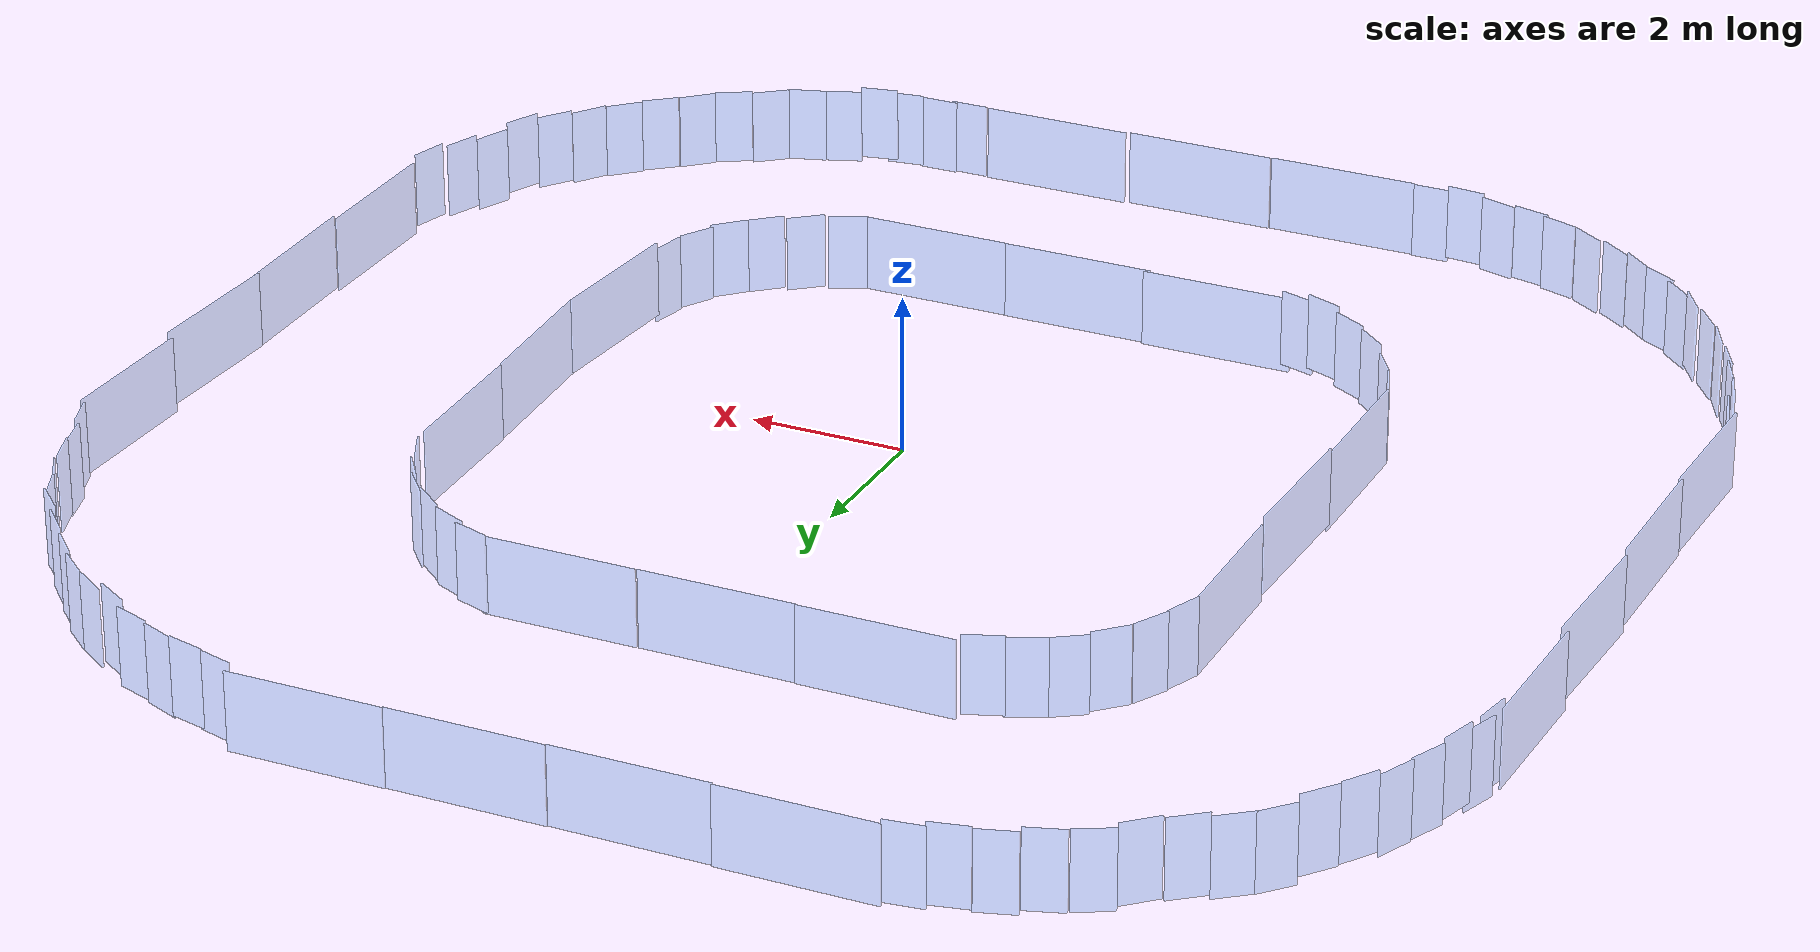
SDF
<?xml version="1.0"?>
<sdf version="1.6">
  <model name="track_walls">
    <static>true</static>
    <link name="segment_0">
      <pose>-0.0636 -5.0557 0.0000 0.0000 0.0000 0.0000</pose>
      <collision name="collision">
        <geometry>
          <box>
            <size>2.0 0.02 1.0</size>
          </box>
        </geometry>
      </collision>
      <visual name="visual">
        <geometry>
          <box>
            <size>2.0 0.02 1.0</size>
          </box>
        </geometry>
        <material>
          <ambient>0.3 0.6 1.0 0.3</ambient>
          <diffuse>0.3 0.6 1.0 0.3</diffuse>
        </material>
      </visual>
    </link>
    <link name="segment_1">
      <pose>-1.9852 -5.0141 0.0000 0.0000 0.0000 0.0000</pose>
      <collision name="collision">
        <geometry>
          <box>
            <size>2.0 0.02 1.0</size>
          </box>
        </geometry>
      </collision>
      <visual name="visual">
        <geometry>
          <box>
            <size>2.0 0.02 1.0</size>
          </box>
        </geometry>
        <material>
          <ambient>0.3 0.6 1.0 0.3</ambient>
          <diffuse>0.3 0.6 1.0 0.3</diffuse>
        </material>
      </visual>
    </link>
    <link name="segment_2">
      <pose>-2.0919 -9.0610 0.0000 0.0000 0.0000 0.0000</pose>
      <collision name="collision">
        <geometry>
          <box>
            <size>2.0 0.02 1.0</size>
          </box>
        </geometry>
      </collision>
      <visual name="visual">
        <geometry>
          <box>
            <size>2.0 0.02 1.0</size>
          </box>
        </geometry>
        <material>
          <ambient>0.3 0.6 1.0 0.3</ambient>
          <diffuse>0.3 0.6 1.0 0.3</diffuse>
        </material>
      </visual>
    </link>
    <link name="segment_3">
      <pose>4.9026 2.0037 0.0672 0.0000 0.0000 1.6030</pose>
      <collision name="collision">
        <geometry>
          <box>
            <size>2.0 0.02 1.0</size>
          </box>
        </geometry>
      </collision>
      <visual name="visual">
        <geometry>
          <box>
            <size>2.0 0.02 1.0</size>
          </box>
        </geometry>
        <material>
          <ambient>0.3 0.6 1.0 0.3</ambient>
          <diffuse>0.3 0.6 1.0 0.3</diffuse>
        </material>
      </visual>
    </link>
    <link name="segment_4">
      <pose>2.0071 5.0050 0.0000 0.0000 0.0000 0.0000</pose>
      <collision name="collision">
        <geometry>
          <box>
            <size>2.0 0.02 1.0</size>
          </box>
        </geometry>
      </collision>
      <visual name="visual">
        <geometry>
          <box>
            <size>2.0 0.02 1.0</size>
          </box>
        </geometry>
        <material>
          <ambient>0.3 0.6 1.0 0.3</ambient>
          <diffuse>0.3 0.6 1.0 0.3</diffuse>
        </material>
      </visual>
    </link>
    <link name="segment_5">
      <pose>-0.0129 4.9969 0.0000 0.0000 0.0000 0.0000</pose>
      <collision name="collision">
        <geometry>
          <box>
            <size>2.0 0.02 1.0</size>
          </box>
        </geometry>
      </collision>
      <visual name="visual">
        <geometry>
          <box>
            <size>2.0 0.02 1.0</size>
          </box>
        </geometry>
        <material>
          <ambient>0.3 0.6 1.0 0.3</ambient>
          <diffuse>0.3 0.6 1.0 0.3</diffuse>
        </material>
      </visual>
    </link>
    <link name="segment_6">
      <pose>-2.0087 5.0126 0.0000 0.0000 0.0000 0.0000</pose>
      <collision name="collision">
        <geometry>
          <box>
            <size>2.0 0.02 1.0</size>
          </box>
        </geometry>
      </collision>
      <visual name="visual">
        <geometry>
          <box>
            <size>2.0 0.02 1.0</size>
          </box>
        </geometry>
        <material>
          <ambient>0.3 0.6 1.0 0.3</ambient>
          <diffuse>0.3 0.6 1.0 0.3</diffuse>
        </material>
      </visual>
    </link>
    <link name="segment_7">
      <pose>-9.0928 -2.9673 0.1394 0.0000 0.0000 -1.5906</pose>
      <collision name="collision">
        <geometry>
          <box>
            <size>2.0 0.02 1.0</size>
          </box>
        </geometry>
      </collision>
      <visual name="visual">
        <geometry>
          <box>
            <size>2.0 0.02 1.0</size>
          </box>
        </geometry>
        <material>
          <ambient>0.3 0.6 1.0 0.3</ambient>
          <diffuse>0.3 0.6 1.0 0.3</diffuse>
        </material>
      </visual>
    </link>
    <link name="segment_8">
      <pose>-9.0923 -1.0161 0.1254 0.0000 0.0000 -1.5716</pose>
      <collision name="collision">
        <geometry>
          <box>
            <size>2.0 0.02 1.0</size>
          </box>
        </geometry>
      </collision>
      <visual name="visual">
        <geometry>
          <box>
            <size>2.0 0.02 1.0</size>
          </box>
        </geometry>
        <material>
          <ambient>0.3 0.6 1.0 0.3</ambient>
          <diffuse>0.3 0.6 1.0 0.3</diffuse>
        </material>
      </visual>
    </link>
    <link name="segment_9">
      <pose>-9.0709 0.9973 0.0617 0.0000 0.0000 -1.6056</pose>
      <collision name="collision">
        <geometry>
          <box>
            <size>2.0 0.02 1.0</size>
          </box>
        </geometry>
      </collision>
      <visual name="visual">
        <geometry>
          <box>
            <size>2.0 0.02 1.0</size>
          </box>
        </geometry>
        <material>
          <ambient>0.3 0.6 1.0 0.3</ambient>
          <diffuse>0.3 0.6 1.0 0.3</diffuse>
        </material>
      </visual>
    </link>
    <link name="segment_10">
      <pose>-9.0882 2.9750 0.0239 0.0000 0.0000 -1.5889</pose>
      <collision name="collision">
        <geometry>
          <box>
            <size>2.0 0.02 1.0</size>
          </box>
        </geometry>
      </collision>
      <visual name="visual">
        <geometry>
          <box>
            <size>2.0 0.02 1.0</size>
          </box>
        </geometry>
        <material>
          <ambient>0.3 0.6 1.0 0.3</ambient>
          <diffuse>0.3 0.6 1.0 0.3</diffuse>
        </material>
      </visual>
    </link>
    <link name="segment_11">
      <pose>-3.0208 9.0894 0.0000 0.0000 0.0000 0.0000</pose>
      <collision name="collision">
        <geometry>
          <box>
            <size>2.0 0.02 1.0</size>
          </box>
        </geometry>
      </collision>
      <visual name="visual">
        <geometry>
          <box>
            <size>2.0 0.02 1.0</size>
          </box>
        </geometry>
        <material>
          <ambient>0.3 0.6 1.0 0.3</ambient>
          <diffuse>0.3 0.6 1.0 0.3</diffuse>
        </material>
      </visual>
    </link>
    <link name="segment_12">
      <pose>-1.0256 9.0649 0.0000 0.0000 0.0000 0.0000</pose>
      <collision name="collision">
        <geometry>
          <box>
            <size>2.0 0.02 1.0</size>
          </box>
        </geometry>
      </collision>
      <visual name="visual">
        <geometry>
          <box>
            <size>2.0 0.02 1.0</size>
          </box>
        </geometry>
        <material>
          <ambient>0.3 0.6 1.0 0.3</ambient>
          <diffuse>0.3 0.6 1.0 0.3</diffuse>
        </material>
      </visual>
    </link>
    <link name="segment_13">
      <pose>-0.0792 -9.0436 0.0000 0.0000 0.0000 0.0000</pose>
      <collision name="collision">
        <geometry>
          <box>
            <size>2.0 0.02 1.0</size>
          </box>
        </geometry>
      </collision>
      <visual name="visual">
        <geometry>
          <box>
            <size>2.0 0.02 1.0</size>
          </box>
        </geometry>
        <material>
          <ambient>0.3 0.6 1.0 0.3</ambient>
          <diffuse>0.3 0.6 1.0 0.3</diffuse>
        </material>
      </visual>
    </link>
    <link name="segment_14">
      <pose>0.9824 9.0794 0.0000 0.0000 0.0000 0.0000</pose>
      <collision name="collision">
        <geometry>
          <box>
            <size>2.0 0.02 1.0</size>
          </box>
        </geometry>
      </collision>
      <visual name="visual">
        <geometry>
          <box>
            <size>2.0 0.02 1.0</size>
          </box>
        </geometry>
        <material>
          <ambient>0.3 0.6 1.0 0.3</ambient>
          <diffuse>0.3 0.6 1.0 0.3</diffuse>
        </material>
      </visual>
    </link>
    <link name="segment_15">
      <pose>2.9768 9.0939 0.0000 0.0000 0.0000 0.0000</pose>
      <collision name="collision">
        <geometry>
          <box>
            <size>2.0 0.02 1.0</size>
          </box>
        </geometry>
      </collision>
      <visual name="visual">
        <geometry>
          <box>
            <size>2.0 0.02 1.0</size>
          </box>
        </geometry>
        <material>
          <ambient>0.3 0.6 1.0 0.3</ambient>
          <diffuse>0.3 0.6 1.0 0.3</diffuse>
        </material>
      </visual>
    </link>
    <link name="segment_16">
      <pose>8.9949 3.0067 0.0616 0.0000 0.0000 1.5429</pose>
      <collision name="collision">
        <geometry>
          <box>
            <size>2.0 0.02 1.0</size>
          </box>
        </geometry>
      </collision>
      <visual name="visual">
        <geometry>
          <box>
            <size>2.0 0.02 1.0</size>
          </box>
        </geometry>
        <material>
          <ambient>0.3 0.6 1.0 0.3</ambient>
          <diffuse>0.3 0.6 1.0 0.3</diffuse>
        </material>
      </visual>
    </link>
    <link name="segment_17">
      <pose>8.9987 0.9739 0.1033 0.0000 0.0000 1.5240</pose>
      <collision name="collision">
        <geometry>
          <box>
            <size>2.0 0.02 1.0</size>
          </box>
        </geometry>
      </collision>
      <visual name="visual">
        <geometry>
          <box>
            <size>2.0 0.02 1.0</size>
          </box>
        </geometry>
        <material>
          <ambient>0.3 0.6 1.0 0.3</ambient>
          <diffuse>0.3 0.6 1.0 0.3</diffuse>
        </material>
      </visual>
    </link>
    <link name="segment_18">
      <pose>9.0060 -1.0173 0.0746 0.0000 0.0000 -1.5592</pose>
      <collision name="collision">
        <geometry>
          <box>
            <size>2.0 0.02 1.0</size>
          </box>
        </geometry>
      </collision>
      <visual name="visual">
        <geometry>
          <box>
            <size>2.0 0.02 1.0</size>
          </box>
        </geometry>
        <material>
          <ambient>0.3 0.6 1.0 0.3</ambient>
          <diffuse>0.3 0.6 1.0 0.3</diffuse>
        </material>
      </visual>
    </link>
    <link name="segment_19">
      <pose>8.9863 -3.0230 0.0404 0.0000 0.0000 -1.5737</pose>
      <collision name="collision">
        <geometry>
          <box>
            <size>2.0 0.02 1.0</size>
          </box>
        </geometry>
      </collision>
      <visual name="visual">
        <geometry>
          <box>
            <size>2.0 0.02 1.0</size>
          </box>
        </geometry>
        <material>
          <ambient>0.3 0.6 1.0 0.3</ambient>
          <diffuse>0.3 0.6 1.0 0.3</diffuse>
        </material>
      </visual>
    </link>
    <link name="segment_20">
      <pose>1.9766 -9.0130 0.0000 0.0000 0.0000 0.0000</pose>
      <collision name="collision">
        <geometry>
          <box>
            <size>2.0 0.02 1.0</size>
          </box>
        </geometry>
      </collision>
      <visual name="visual">
        <geometry>
          <box>
            <size>2.0 0.02 1.0</size>
          </box>
        </geometry>
        <material>
          <ambient>0.3 0.6 1.0 0.3</ambient>
          <diffuse>0.3 0.6 1.0 0.3</diffuse>
        </material>
      </visual>
    </link>
    <link name="segment_21">
      <pose>1.9374 -5.0646 0.0000 0.0000 0.0000 0.0000</pose>
      <collision name="collision">
        <geometry>
          <box>
            <size>2.0 0.02 1.0</size>
          </box>
        </geometry>
      </collision>
      <visual name="visual">
        <geometry>
          <box>
            <size>2.0 0.02 1.0</size>
          </box>
        </geometry>
        <material>
          <ambient>0.3 0.6 1.0 0.3</ambient>
          <diffuse>0.3 0.6 1.0 0.3</diffuse>
        </material>
      </visual>
    </link>
    <link name="segment_22">
      <pose>-5.0511 -2.0249 0.0284 0.0000 0.0000 -1.5633</pose>
      <collision name="collision">
        <geometry>
          <box>
            <size>2.0 0.02 1.0</size>
          </box>
        </geometry>
      </collision>
      <visual name="visual">
        <geometry>
          <box>
            <size>2.0 0.02 1.0</size>
          </box>
        </geometry>
        <material>
          <ambient>0.3 0.6 1.0 0.3</ambient>
          <diffuse>0.3 0.6 1.0 0.3</diffuse>
        </material>
      </visual>
    </link>
    <link name="segment_23">
      <pose>-5.0722 -0.0241 0.1284 0.0000 0.0000 1.5549</pose>
      <collision name="collision">
        <geometry>
          <box>
            <size>2.0 0.02 1.0</size>
          </box>
        </geometry>
      </collision>
      <visual name="visual">
        <geometry>
          <box>
            <size>2.0 0.02 1.0</size>
          </box>
        </geometry>
        <material>
          <ambient>0.3 0.6 1.0 0.3</ambient>
          <diffuse>0.3 0.6 1.0 0.3</diffuse>
        </material>
      </visual>
    </link>
    <link name="segment_24">
      <pose>-5.0625 2.0098 0.0420 0.0000 0.0000 1.5852</pose>
      <collision name="collision">
        <geometry>
          <box>
            <size>2.0 0.02 1.0</size>
          </box>
        </geometry>
      </collision>
      <visual name="visual">
        <geometry>
          <box>
            <size>2.0 0.02 1.0</size>
          </box>
        </geometry>
        <material>
          <ambient>0.3 0.6 1.0 0.3</ambient>
          <diffuse>0.3 0.6 1.0 0.3</diffuse>
        </material>
      </visual>
    </link>
    <link name="segment_25">
      <pose>4.8982 -1.9092 0.1412 0.0000 0.0000 -1.6535</pose>
      <collision name="collision">
        <geometry>
          <box>
            <size>2.0 0.02 1.0</size>
          </box>
        </geometry>
      </collision>
      <visual name="visual">
        <geometry>
          <box>
            <size>2.0 0.02 1.0</size>
          </box>
        </geometry>
        <material>
          <ambient>0.3 0.6 1.0 0.3</ambient>
          <diffuse>0.3 0.6 1.0 0.3</diffuse>
        </material>
      </visual>
    </link>
    <link name="segment_26">
      <pose>4.9810 0.0038 0.0888 0.0000 0.0000 -1.5170</pose>
      <collision name="collision">
        <geometry>
          <box>
            <size>2.0 0.02 1.0</size>
          </box>
        </geometry>
      </collision>
      <visual name="visual">
        <geometry>
          <box>
            <size>2.0 0.02 1.0</size>
          </box>
        </geometry>
        <material>
          <ambient>0.3 0.6 1.0 0.3</ambient>
          <diffuse>0.3 0.6 1.0 0.3</diffuse>
        </material>
      </visual>
    </link>
    <link name="segment_27">
      <pose>-4.9471 -3.2880 0.0410 0.0000 0.0000 -1.1865</pose>
      <collision name="collision">
        <geometry>
          <box>
            <size>0.5 0.02 1.0</size>
          </box>
        </geometry>
      </collision>
      <visual name="visual">
        <geometry>
          <box>
            <size>0.5 0.02 1.0</size>
          </box>
        </geometry>
        <material>
          <ambient>0.3 0.6 1.0 0.3</ambient>
          <diffuse>0.3 0.6 1.0 0.3</diffuse>
        </material>
      </visual>
    </link>
    <link name="segment_28">
      <pose>-4.7203 -3.7355 0.0292 0.0000 0.0000 -0.9873</pose>
      <collision name="collision">
        <geometry>
          <box>
            <size>0.5 0.02 1.0</size>
          </box>
        </geometry>
      </collision>
      <visual name="visual">
        <geometry>
          <box>
            <size>0.5 0.02 1.0</size>
          </box>
        </geometry>
        <material>
          <ambient>0.3 0.6 1.0 0.3</ambient>
          <diffuse>0.3 0.6 1.0 0.3</diffuse>
        </material>
      </visual>
    </link>
    <link name="segment_29">
      <pose>-4.3785 -4.1792 0.1070 0.0000 0.0000 -0.7221</pose>
      <collision name="collision">
        <geometry>
          <box>
            <size>0.5 0.02 1.0</size>
          </box>
        </geometry>
      </collision>
      <visual name="visual">
        <geometry>
          <box>
            <size>0.5 0.02 1.0</size>
          </box>
        </geometry>
        <material>
          <ambient>0.3 0.6 1.0 0.3</ambient>
          <diffuse>0.3 0.6 1.0 0.3</diffuse>
        </material>
      </visual>
    </link>
    <link name="segment_30">
      <pose>4.8025 -3.1673 0.0295 0.0000 0.0000 1.3622</pose>
      <collision name="collision">
        <geometry>
          <box>
            <size>0.5 0.02 1.0</size>
          </box>
        </geometry>
      </collision>
      <visual name="visual">
        <geometry>
          <box>
            <size>0.5 0.02 1.0</size>
          </box>
        </geometry>
        <material>
          <ambient>0.3 0.6 1.0 0.3</ambient>
          <diffuse>0.3 0.6 1.0 0.3</diffuse>
        </material>
      </visual>
    </link>
    <link name="segment_31">
      <pose>4.8091 3.2971 0.0202 0.0000 0.0000 -1.1242</pose>
      <collision name="collision">
        <geometry>
          <box>
            <size>0.5 0.02 1.0</size>
          </box>
        </geometry>
      </collision>
      <visual name="visual">
        <geometry>
          <box>
            <size>0.5 0.02 1.0</size>
          </box>
        </geometry>
        <material>
          <ambient>0.3 0.6 1.0 0.3</ambient>
          <diffuse>0.3 0.6 1.0 0.3</diffuse>
        </material>
      </visual>
    </link>
    <link name="segment_32">
      <pose>4.5875 3.7770 0.0267 0.0000 0.0000 -0.9498</pose>
      <collision name="collision">
        <geometry>
          <box>
            <size>0.5 0.02 1.0</size>
          </box>
        </geometry>
      </collision>
      <visual name="visual">
        <geometry>
          <box>
            <size>0.5 0.02 1.0</size>
          </box>
        </geometry>
        <material>
          <ambient>0.3 0.6 1.0 0.3</ambient>
          <diffuse>0.3 0.6 1.0 0.3</diffuse>
        </material>
      </visual>
    </link>
    <link name="segment_33">
      <pose>4.3206 4.1969 0.0519 0.0000 0.0000 -0.8570</pose>
      <collision name="collision">
        <geometry>
          <box>
            <size>0.5 0.02 1.0</size>
          </box>
        </geometry>
      </collision>
      <visual name="visual">
        <geometry>
          <box>
            <size>0.5 0.02 1.0</size>
          </box>
        </geometry>
        <material>
          <ambient>0.3 0.6 1.0 0.3</ambient>
          <diffuse>0.3 0.6 1.0 0.3</diffuse>
        </material>
      </visual>
    </link>
    <link name="segment_34">
      <pose>3.9632 4.5181 0.0849 0.0000 0.0000 -0.6875</pose>
      <collision name="collision">
        <geometry>
          <box>
            <size>0.5 0.02 1.0</size>
          </box>
        </geometry>
      </collision>
      <visual name="visual">
        <geometry>
          <box>
            <size>0.5 0.02 1.0</size>
          </box>
        </geometry>
        <material>
          <ambient>0.3 0.6 1.0 0.3</ambient>
          <diffuse>0.3 0.6 1.0 0.3</diffuse>
        </material>
      </visual>
    </link>
    <link name="segment_35">
      <pose>3.5427 4.7957 0.0652 0.0000 0.0000 -0.4300</pose>
      <collision name="collision">
        <geometry>
          <box>
            <size>0.5 0.02 1.0</size>
          </box>
        </geometry>
      </collision>
      <visual name="visual">
        <geometry>
          <box>
            <size>0.5 0.02 1.0</size>
          </box>
        </geometry>
        <material>
          <ambient>0.3 0.6 1.0 0.3</ambient>
          <diffuse>0.3 0.6 1.0 0.3</diffuse>
        </material>
      </visual>
    </link>
    <link name="segment_36">
      <pose>3.1711 4.9541 0.0279 0.0000 0.0000 -0.3249</pose>
      <collision name="collision">
        <geometry>
          <box>
            <size>0.5 0.02 1.0</size>
          </box>
        </geometry>
      </collision>
      <visual name="visual">
        <geometry>
          <box>
            <size>0.5 0.02 1.0</size>
          </box>
        </geometry>
        <material>
          <ambient>0.3 0.6 1.0 0.3</ambient>
          <diffuse>0.3 0.6 1.0 0.3</diffuse>
        </material>
      </visual>
    </link>
    <link name="segment_37">
      <pose>-3.2952 4.9191 0.0793 0.0000 0.0000 0.3532</pose>
      <collision name="collision">
        <geometry>
          <box>
            <size>0.5 0.02 1.0</size>
          </box>
        </geometry>
      </collision>
      <visual name="visual">
        <geometry>
          <box>
            <size>0.5 0.02 1.0</size>
          </box>
        </geometry>
        <material>
          <ambient>0.3 0.6 1.0 0.3</ambient>
          <diffuse>0.3 0.6 1.0 0.3</diffuse>
        </material>
      </visual>
    </link>
    <link name="segment_38">
      <pose>-3.7448 4.7358 0.0642 0.0000 0.0000 0.4077</pose>
      <collision name="collision">
        <geometry>
          <box>
            <size>0.5 0.02 1.0</size>
          </box>
        </geometry>
      </collision>
      <visual name="visual">
        <geometry>
          <box>
            <size>0.5 0.02 1.0</size>
          </box>
        </geometry>
        <material>
          <ambient>0.3 0.6 1.0 0.3</ambient>
          <diffuse>0.3 0.6 1.0 0.3</diffuse>
        </material>
      </visual>
    </link>
    <link name="segment_39">
      <pose>-4.1375 4.4844 0.0469 0.0000 0.0000 0.5907</pose>
      <collision name="collision">
        <geometry>
          <box>
            <size>0.5 0.02 1.0</size>
          </box>
        </geometry>
      </collision>
      <visual name="visual">
        <geometry>
          <box>
            <size>0.5 0.02 1.0</size>
          </box>
        </geometry>
        <material>
          <ambient>0.3 0.6 1.0 0.3</ambient>
          <diffuse>0.3 0.6 1.0 0.3</diffuse>
        </material>
      </visual>
    </link>
    <link name="segment_40">
      <pose>-3.9684 -4.4937 0.1368 0.0000 0.0000 -0.5188</pose>
      <collision name="collision">
        <geometry>
          <box>
            <size>0.5 0.02 1.0</size>
          </box>
        </geometry>
      </collision>
      <visual name="visual">
        <geometry>
          <box>
            <size>0.5 0.02 1.0</size>
          </box>
        </geometry>
        <material>
          <ambient>0.3 0.6 1.0 0.3</ambient>
          <diffuse>0.3 0.6 1.0 0.3</diffuse>
        </material>
      </visual>
    </link>
    <link name="segment_41">
      <pose>-4.5089 4.1387 0.0642 0.0000 0.0000 0.7836</pose>
      <collision name="collision">
        <geometry>
          <box>
            <size>0.5 0.02 1.0</size>
          </box>
        </geometry>
      </collision>
      <visual name="visual">
        <geometry>
          <box>
            <size>0.5 0.02 1.0</size>
          </box>
        </geometry>
        <material>
          <ambient>0.3 0.6 1.0 0.3</ambient>
          <diffuse>0.3 0.6 1.0 0.3</diffuse>
        </material>
      </visual>
    </link>
    <link name="segment_42">
      <pose>-4.8132 3.7280 0.0712 0.0000 0.0000 1.0933</pose>
      <collision name="collision">
        <geometry>
          <box>
            <size>0.5 0.02 1.0</size>
          </box>
        </geometry>
      </collision>
      <visual name="visual">
        <geometry>
          <box>
            <size>0.5 0.02 1.0</size>
          </box>
        </geometry>
        <material>
          <ambient>0.3 0.6 1.0 0.3</ambient>
          <diffuse>0.3 0.6 1.0 0.3</diffuse>
        </material>
      </visual>
    </link>
    <link name="segment_43">
      <pose>-5.0062 3.2634 0.0714 0.0000 0.0000 1.2012</pose>
      <collision name="collision">
        <geometry>
          <box>
            <size>0.5 0.02 1.0</size>
          </box>
        </geometry>
      </collision>
      <visual name="visual">
        <geometry>
          <box>
            <size>0.5 0.02 1.0</size>
          </box>
        </geometry>
        <material>
          <ambient>0.3 0.6 1.0 0.3</ambient>
          <diffuse>0.3 0.6 1.0 0.3</diffuse>
        </material>
      </visual>
    </link>
    <link name="segment_44">
      <pose>3.2595 -9.0290 0.0000 0.0000 0.0000 0.0000</pose>
      <collision name="collision">
        <geometry>
          <box>
            <size>0.5 0.02 1.0</size>
          </box>
        </geometry>
      </collision>
      <visual name="visual">
        <geometry>
          <box>
            <size>0.5 0.02 1.0</size>
          </box>
        </geometry>
        <material>
          <ambient>0.3 0.6 1.0 0.3</ambient>
          <diffuse>0.3 0.6 1.0 0.3</diffuse>
        </material>
      </visual>
    </link>
    <link name="segment_45">
      <pose>3.6843 -8.9851 0.0000 0.0000 0.0000 0.0000</pose>
      <collision name="collision">
        <geometry>
          <box>
            <size>0.5 0.02 1.0</size>
          </box>
        </geometry>
      </collision>
      <visual name="visual">
        <geometry>
          <box>
            <size>0.5 0.02 1.0</size>
          </box>
        </geometry>
        <material>
          <ambient>0.3 0.6 1.0 0.3</ambient>
          <diffuse>0.3 0.6 1.0 0.3</diffuse>
        </material>
      </visual>
    </link>
    <link name="segment_46">
      <pose>4.1614 -8.9307 0.0228 0.0000 0.0000 0.1399</pose>
      <collision name="collision">
        <geometry>
          <box>
            <size>0.5 0.02 1.0</size>
          </box>
        </geometry>
      </collision>
      <visual name="visual">
        <geometry>
          <box>
            <size>0.5 0.02 1.0</size>
          </box>
        </geometry>
        <material>
          <ambient>0.3 0.6 1.0 0.3</ambient>
          <diffuse>0.3 0.6 1.0 0.3</diffuse>
        </material>
      </visual>
    </link>
    <link name="segment_47">
      <pose>4.5087 -8.8401 0.0686 0.0000 0.0000 0.2020</pose>
      <collision name="collision">
        <geometry>
          <box>
            <size>0.5 0.02 1.0</size>
          </box>
        </geometry>
      </collision>
      <visual name="visual">
        <geometry>
          <box>
            <size>0.5 0.02 1.0</size>
          </box>
        </geometry>
        <material>
          <ambient>0.3 0.6 1.0 0.3</ambient>
          <diffuse>0.3 0.6 1.0 0.3</diffuse>
        </material>
      </visual>
    </link>
    <link name="segment_48">
      <pose>4.9636 -8.6528 0.0234 0.0000 0.0000 0.3504</pose>
      <collision name="collision">
        <geometry>
          <box>
            <size>0.5 0.02 1.0</size>
          </box>
        </geometry>
      </collision>
      <visual name="visual">
        <geometry>
          <box>
            <size>0.5 0.02 1.0</size>
          </box>
        </geometry>
        <material>
          <ambient>0.3 0.6 1.0 0.3</ambient>
          <diffuse>0.3 0.6 1.0 0.3</diffuse>
        </material>
      </visual>
    </link>
    <link name="segment_49">
      <pose>5.4002 -8.4568 0.0395 0.0000 0.0000 0.3012</pose>
      <collision name="collision">
        <geometry>
          <box>
            <size>0.5 0.02 1.0</size>
          </box>
        </geometry>
      </collision>
      <visual name="visual">
        <geometry>
          <box>
            <size>0.5 0.02 1.0</size>
          </box>
        </geometry>
        <material>
          <ambient>0.3 0.6 1.0 0.3</ambient>
          <diffuse>0.3 0.6 1.0 0.3</diffuse>
        </material>
      </visual>
    </link>
    <link name="segment_50">
      <pose>5.8500 -8.2442 0.0227 0.0000 0.0000 0.6785</pose>
      <collision name="collision">
        <geometry>
          <box>
            <size>0.5 0.02 1.0</size>
          </box>
        </geometry>
      </collision>
      <visual name="visual">
        <geometry>
          <box>
            <size>0.5 0.02 1.0</size>
          </box>
        </geometry>
        <material>
          <ambient>0.3 0.6 1.0 0.3</ambient>
          <diffuse>0.3 0.6 1.0 0.3</diffuse>
        </material>
      </visual>
    </link>
    <link name="segment_51">
      <pose>-3.5180 -4.7778 0.1835 0.0000 0.0000 -0.3693</pose>
      <collision name="collision">
        <geometry>
          <box>
            <size>0.5 0.02 1.0</size>
          </box>
        </geometry>
      </collision>
      <visual name="visual">
        <geometry>
          <box>
            <size>0.5 0.02 1.0</size>
          </box>
        </geometry>
        <material>
          <ambient>0.3 0.6 1.0 0.3</ambient>
          <diffuse>0.3 0.6 1.0 0.3</diffuse>
        </material>
      </visual>
    </link>
    <link name="segment_52">
      <pose>6.2684 -7.9627 0.0429 0.0000 0.0000 0.5347</pose>
      <collision name="collision">
        <geometry>
          <box>
            <size>0.5 0.02 1.0</size>
          </box>
        </geometry>
      </collision>
      <visual name="visual">
        <geometry>
          <box>
            <size>0.5 0.02 1.0</size>
          </box>
        </geometry>
        <material>
          <ambient>0.3 0.6 1.0 0.3</ambient>
          <diffuse>0.3 0.6 1.0 0.3</diffuse>
        </material>
      </visual>
    </link>
    <link name="segment_53">
      <pose>6.6634 -7.6703 0.0354 0.0000 0.0000 0.7563</pose>
      <collision name="collision">
        <geometry>
          <box>
            <size>0.5 0.02 1.0</size>
          </box>
        </geometry>
      </collision>
      <visual name="visual">
        <geometry>
          <box>
            <size>0.5 0.02 1.0</size>
          </box>
        </geometry>
        <material>
          <ambient>0.3 0.6 1.0 0.3</ambient>
          <diffuse>0.3 0.6 1.0 0.3</diffuse>
        </material>
      </visual>
    </link>
    <link name="segment_54">
      <pose>7.0432 -7.3135 0.0496 0.0000 0.0000 0.6893</pose>
      <collision name="collision">
        <geometry>
          <box>
            <size>0.5 0.02 1.0</size>
          </box>
        </geometry>
      </collision>
      <visual name="visual">
        <geometry>
          <box>
            <size>0.5 0.02 1.0</size>
          </box>
        </geometry>
        <material>
          <ambient>0.3 0.6 1.0 0.3</ambient>
          <diffuse>0.3 0.6 1.0 0.3</diffuse>
        </material>
      </visual>
    </link>
    <link name="segment_55">
      <pose>7.4157 -6.9744 0.0377 0.0000 0.0000 0.7709</pose>
      <collision name="collision">
        <geometry>
          <box>
            <size>0.5 0.02 1.0</size>
          </box>
        </geometry>
      </collision>
      <visual name="visual">
        <geometry>
          <box>
            <size>0.5 0.02 1.0</size>
          </box>
        </geometry>
        <material>
          <ambient>0.3 0.6 1.0 0.3</ambient>
          <diffuse>0.3 0.6 1.0 0.3</diffuse>
        </material>
      </visual>
    </link>
    <link name="segment_56">
      <pose>7.7312 -6.5700 0.0590 0.0000 0.0000 0.9758</pose>
      <collision name="collision">
        <geometry>
          <box>
            <size>0.5 0.02 1.0</size>
          </box>
        </geometry>
      </collision>
      <visual name="visual">
        <geometry>
          <box>
            <size>0.5 0.02 1.0</size>
          </box>
        </geometry>
        <material>
          <ambient>0.3 0.6 1.0 0.3</ambient>
          <diffuse>0.3 0.6 1.0 0.3</diffuse>
        </material>
      </visual>
    </link>
    <link name="segment_57">
      <pose>8.0183 -6.1371 0.1028 0.0000 0.0000 0.9444</pose>
      <collision name="collision">
        <geometry>
          <box>
            <size>0.5 0.02 1.0</size>
          </box>
        </geometry>
      </collision>
      <visual name="visual">
        <geometry>
          <box>
            <size>0.5 0.02 1.0</size>
          </box>
        </geometry>
        <material>
          <ambient>0.3 0.6 1.0 0.3</ambient>
          <diffuse>0.3 0.6 1.0 0.3</diffuse>
        </material>
      </visual>
    </link>
    <link name="segment_58">
      <pose>8.2679 -5.6979 0.1695 0.0000 0.0000 1.1534</pose>
      <collision name="collision">
        <geometry>
          <box>
            <size>0.5 0.02 1.0</size>
          </box>
        </geometry>
      </collision>
      <visual name="visual">
        <geometry>
          <box>
            <size>0.5 0.02 1.0</size>
          </box>
        </geometry>
        <material>
          <ambient>0.3 0.6 1.0 0.3</ambient>
          <diffuse>0.3 0.6 1.0 0.3</diffuse>
        </material>
      </visual>
    </link>
    <link name="segment_59">
      <pose>8.4722 -5.2353 0.0744 0.0000 0.0000 1.1733</pose>
      <collision name="collision">
        <geometry>
          <box>
            <size>0.5 0.02 1.0</size>
          </box>
        </geometry>
      </collision>
      <visual name="visual">
        <geometry>
          <box>
            <size>0.5 0.02 1.0</size>
          </box>
        </geometry>
        <material>
          <ambient>0.3 0.6 1.0 0.3</ambient>
          <diffuse>0.3 0.6 1.0 0.3</diffuse>
        </material>
      </visual>
    </link>
    <link name="segment_60">
      <pose>8.6568 -4.7478 0.1420 0.0000 0.0000 1.2167</pose>
      <collision name="collision">
        <geometry>
          <box>
            <size>0.5 0.02 1.0</size>
          </box>
        </geometry>
      </collision>
      <visual name="visual">
        <geometry>
          <box>
            <size>0.5 0.02 1.0</size>
          </box>
        </geometry>
        <material>
          <ambient>0.3 0.6 1.0 0.3</ambient>
          <diffuse>0.3 0.6 1.0 0.3</diffuse>
        </material>
      </visual>
    </link>
    <link name="segment_61">
      <pose>8.8659 -4.2357 0.1766 0.0000 0.0000 1.3081</pose>
      <collision name="collision">
        <geometry>
          <box>
            <size>0.5 0.02 1.0</size>
          </box>
        </geometry>
      </collision>
      <visual name="visual">
        <geometry>
          <box>
            <size>0.5 0.02 1.0</size>
          </box>
        </geometry>
        <material>
          <ambient>0.3 0.6 1.0 0.3</ambient>
          <diffuse>0.3 0.6 1.0 0.3</diffuse>
        </material>
      </visual>
    </link>
    <link name="segment_62">
      <pose>-3.1099 -4.9368 0.0937 0.0000 0.0000 -0.3085</pose>
      <collision name="collision">
        <geometry>
          <box>
            <size>0.5 0.02 1.0</size>
          </box>
        </geometry>
      </collision>
      <visual name="visual">
        <geometry>
          <box>
            <size>0.5 0.02 1.0</size>
          </box>
        </geometry>
        <material>
          <ambient>0.3 0.6 1.0 0.3</ambient>
          <diffuse>0.3 0.6 1.0 0.3</diffuse>
        </material>
      </visual>
    </link>
    <link name="segment_63">
      <pose>8.8873 4.2464 0.0533 0.0000 0.0000 -1.2348</pose>
      <collision name="collision">
        <geometry>
          <box>
            <size>0.5 0.02 1.0</size>
          </box>
        </geometry>
      </collision>
      <visual name="visual">
        <geometry>
          <box>
            <size>0.5 0.02 1.0</size>
          </box>
        </geometry>
        <material>
          <ambient>0.3 0.6 1.0 0.3</ambient>
          <diffuse>0.3 0.6 1.0 0.3</diffuse>
        </material>
      </visual>
    </link>
    <link name="segment_64">
      <pose>8.6867 4.7195 0.0285 0.0000 0.0000 1.8461</pose>
      <collision name="collision">
        <geometry>
          <box>
            <size>0.5 0.02 1.0</size>
          </box>
        </geometry>
      </collision>
      <visual name="visual">
        <geometry>
          <box>
            <size>0.5 0.02 1.0</size>
          </box>
        </geometry>
        <material>
          <ambient>0.3 0.6 1.0 0.3</ambient>
          <diffuse>0.3 0.6 1.0 0.3</diffuse>
        </material>
      </visual>
    </link>
    <link name="segment_65">
      <pose>8.5186 5.2117 0.0812 0.0000 0.0000 -1.2333</pose>
      <collision name="collision">
        <geometry>
          <box>
            <size>0.5 0.02 1.0</size>
          </box>
        </geometry>
      </collision>
      <visual name="visual">
        <geometry>
          <box>
            <size>0.5 0.02 1.0</size>
          </box>
        </geometry>
        <material>
          <ambient>0.3 0.6 1.0 0.3</ambient>
          <diffuse>0.3 0.6 1.0 0.3</diffuse>
        </material>
      </visual>
    </link>
    <link name="segment_66">
      <pose>8.3424 5.6732 0.0601 0.0000 0.0000 -1.0145</pose>
      <collision name="collision">
        <geometry>
          <box>
            <size>0.5 0.02 1.0</size>
          </box>
        </geometry>
      </collision>
      <visual name="visual">
        <geometry>
          <box>
            <size>0.5 0.02 1.0</size>
          </box>
        </geometry>
        <material>
          <ambient>0.3 0.6 1.0 0.3</ambient>
          <diffuse>0.3 0.6 1.0 0.3</diffuse>
        </material>
      </visual>
    </link>
    <link name="segment_67">
      <pose>8.1077 6.1225 0.0931 0.0000 0.0000 -1.1559</pose>
      <collision name="collision">
        <geometry>
          <box>
            <size>0.5 0.02 1.0</size>
          </box>
        </geometry>
      </collision>
      <visual name="visual">
        <geometry>
          <box>
            <size>0.5 0.02 1.0</size>
          </box>
        </geometry>
        <material>
          <ambient>0.3 0.6 1.0 0.3</ambient>
          <diffuse>0.3 0.6 1.0 0.3</diffuse>
        </material>
      </visual>
    </link>
    <link name="segment_68">
      <pose>7.8393 6.5487 0.1691 0.0000 0.0000 -0.7712</pose>
      <collision name="collision">
        <geometry>
          <box>
            <size>0.5 0.02 1.0</size>
          </box>
        </geometry>
      </collision>
      <visual name="visual">
        <geometry>
          <box>
            <size>0.5 0.02 1.0</size>
          </box>
        </geometry>
        <material>
          <ambient>0.3 0.6 1.0 0.3</ambient>
          <diffuse>0.3 0.6 1.0 0.3</diffuse>
        </material>
      </visual>
    </link>
    <link name="segment_69">
      <pose>4.1697 8.9832 0.0871 0.0000 0.0000 -0.2779</pose>
      <collision name="collision">
        <geometry>
          <box>
            <size>0.5 0.02 1.0</size>
          </box>
        </geometry>
      </collision>
      <visual name="visual">
        <geometry>
          <box>
            <size>0.5 0.02 1.0</size>
          </box>
        </geometry>
        <material>
          <ambient>0.3 0.6 1.0 0.3</ambient>
          <diffuse>0.3 0.6 1.0 0.3</diffuse>
        </material>
      </visual>
    </link>
    <link name="segment_70">
      <pose>7.5177 6.9363 0.1331 0.0000 0.0000 -0.7958</pose>
      <collision name="collision">
        <geometry>
          <box>
            <size>0.5 0.02 1.0</size>
          </box>
        </geometry>
      </collision>
      <visual name="visual">
        <geometry>
          <box>
            <size>0.5 0.02 1.0</size>
          </box>
        </geometry>
        <material>
          <ambient>0.3 0.6 1.0 0.3</ambient>
          <diffuse>0.3 0.6 1.0 0.3</diffuse>
        </material>
      </visual>
    </link>
    <link name="segment_71">
      <pose>7.1625 7.3062 0.0729 0.0000 0.0000 -0.7845</pose>
      <collision name="collision">
        <geometry>
          <box>
            <size>0.5 0.02 1.0</size>
          </box>
        </geometry>
      </collision>
      <visual name="visual">
        <geometry>
          <box>
            <size>0.5 0.02 1.0</size>
          </box>
        </geometry>
        <material>
          <ambient>0.3 0.6 1.0 0.3</ambient>
          <diffuse>0.3 0.6 1.0 0.3</diffuse>
        </material>
      </visual>
    </link>
    <link name="segment_72">
      <pose>6.8060 7.6851 0.0699 0.0000 0.0000 -0.7051</pose>
      <collision name="collision">
        <geometry>
          <box>
            <size>0.5 0.02 1.0</size>
          </box>
        </geometry>
      </collision>
      <visual name="visual">
        <geometry>
          <box>
            <size>0.5 0.02 1.0</size>
          </box>
        </geometry>
        <material>
          <ambient>0.3 0.6 1.0 0.3</ambient>
          <diffuse>0.3 0.6 1.0 0.3</diffuse>
        </material>
      </visual>
    </link>
    <link name="segment_73">
      <pose>3.1123 -4.9455 0.0083 0.0000 0.0000 0.4402</pose>
      <collision name="collision">
        <geometry>
          <box>
            <size>0.5 0.02 1.0</size>
          </box>
        </geometry>
      </collision>
      <visual name="visual">
        <geometry>
          <box>
            <size>0.5 0.02 1.0</size>
          </box>
        </geometry>
        <material>
          <ambient>0.3 0.6 1.0 0.3</ambient>
          <diffuse>0.3 0.6 1.0 0.3</diffuse>
        </material>
      </visual>
    </link>
    <link name="segment_74">
      <pose>6.4072 7.9778 0.0639 0.0000 0.0000 -0.5844</pose>
      <collision name="collision">
        <geometry>
          <box>
            <size>0.5 0.02 1.0</size>
          </box>
        </geometry>
      </collision>
      <visual name="visual">
        <geometry>
          <box>
            <size>0.5 0.02 1.0</size>
          </box>
        </geometry>
        <material>
          <ambient>0.3 0.6 1.0 0.3</ambient>
          <diffuse>0.3 0.6 1.0 0.3</diffuse>
        </material>
      </visual>
    </link>
    <link name="segment_75">
      <pose>5.9490 8.2227 0.1355 0.0000 0.0000 -0.5457</pose>
      <collision name="collision">
        <geometry>
          <box>
            <size>0.5 0.02 1.0</size>
          </box>
        </geometry>
      </collision>
      <visual name="visual">
        <geometry>
          <box>
            <size>0.5 0.02 1.0</size>
          </box>
        </geometry>
        <material>
          <ambient>0.3 0.6 1.0 0.3</ambient>
          <diffuse>0.3 0.6 1.0 0.3</diffuse>
        </material>
      </visual>
    </link>
    <link name="segment_76">
      <pose>5.5373 8.4831 0.0698 0.0000 0.0000 -0.3416</pose>
      <collision name="collision">
        <geometry>
          <box>
            <size>0.5 0.02 1.0</size>
          </box>
        </geometry>
      </collision>
      <visual name="visual">
        <geometry>
          <box>
            <size>0.5 0.02 1.0</size>
          </box>
        </geometry>
        <material>
          <ambient>0.3 0.6 1.0 0.3</ambient>
          <diffuse>0.3 0.6 1.0 0.3</diffuse>
        </material>
      </visual>
    </link>
    <link name="segment_77">
      <pose>5.0654 8.6830 0.0550 0.0000 0.0000 -0.3925</pose>
      <collision name="collision">
        <geometry>
          <box>
            <size>0.5 0.02 1.0</size>
          </box>
        </geometry>
      </collision>
      <visual name="visual">
        <geometry>
          <box>
            <size>0.5 0.02 1.0</size>
          </box>
        </geometry>
        <material>
          <ambient>0.3 0.6 1.0 0.3</ambient>
          <diffuse>0.3 0.6 1.0 0.3</diffuse>
        </material>
      </visual>
    </link>
    <link name="segment_78">
      <pose>4.6003 8.8684 0.1022 0.0000 0.0000 -0.2482</pose>
      <collision name="collision">
        <geometry>
          <box>
            <size>0.5 0.02 1.0</size>
          </box>
        </geometry>
      </collision>
      <visual name="visual">
        <geometry>
          <box>
            <size>0.5 0.02 1.0</size>
          </box>
        </geometry>
        <material>
          <ambient>0.3 0.6 1.0 0.3</ambient>
          <diffuse>0.3 0.6 1.0 0.3</diffuse>
        </material>
      </visual>
    </link>
    <link name="segment_79">
      <pose>-4.2662 9.0499 0.0519 0.0000 0.0000 0.1225</pose>
      <collision name="collision">
        <geometry>
          <box>
            <size>0.5 0.02 1.0</size>
          </box>
        </geometry>
      </collision>
      <visual name="visual">
        <geometry>
          <box>
            <size>0.5 0.02 1.0</size>
          </box>
        </geometry>
        <material>
          <ambient>0.3 0.6 1.0 0.3</ambient>
          <diffuse>0.3 0.6 1.0 0.3</diffuse>
        </material>
      </visual>
    </link>
    <link name="segment_80">
      <pose>-4.7291 8.9363 0.0904 0.0000 0.0000 0.2133</pose>
      <collision name="collision">
        <geometry>
          <box>
            <size>0.5 0.02 1.0</size>
          </box>
        </geometry>
      </collision>
      <visual name="visual">
        <geometry>
          <box>
            <size>0.5 0.02 1.0</size>
          </box>
        </geometry>
        <material>
          <ambient>0.3 0.6 1.0 0.3</ambient>
          <diffuse>0.3 0.6 1.0 0.3</diffuse>
        </material>
      </visual>
    </link>
    <link name="segment_81">
      <pose>-6.1365 8.3549 0.0784 0.0000 0.0000 0.4741</pose>
      <collision name="collision">
        <geometry>
          <box>
            <size>0.5 0.02 1.0</size>
          </box>
        </geometry>
      </collision>
      <visual name="visual">
        <geometry>
          <box>
            <size>0.5 0.02 1.0</size>
          </box>
        </geometry>
        <material>
          <ambient>0.3 0.6 1.0 0.3</ambient>
          <diffuse>0.3 0.6 1.0 0.3</diffuse>
        </material>
      </visual>
    </link>
    <link name="segment_82">
      <pose>-5.6904 8.6185 0.1064 0.0000 0.0000 0.3186</pose>
      <collision name="collision">
        <geometry>
          <box>
            <size>0.5 0.02 1.0</size>
          </box>
        </geometry>
      </collision>
      <visual name="visual">
        <geometry>
          <box>
            <size>0.5 0.02 1.0</size>
          </box>
        </geometry>
        <material>
          <ambient>0.3 0.6 1.0 0.3</ambient>
          <diffuse>0.3 0.6 1.0 0.3</diffuse>
        </material>
      </visual>
    </link>
    <link name="segment_83">
      <pose>-5.2142 8.8004 0.0628 0.0000 0.0000 0.3012</pose>
      <collision name="collision">
        <geometry>
          <box>
            <size>0.5 0.02 1.0</size>
          </box>
        </geometry>
      </collision>
      <visual name="visual">
        <geometry>
          <box>
            <size>0.5 0.02 1.0</size>
          </box>
        </geometry>
        <material>
          <ambient>0.3 0.6 1.0 0.3</ambient>
          <diffuse>0.3 0.6 1.0 0.3</diffuse>
        </material>
      </visual>
    </link>
    <link name="segment_84">
      <pose>3.5874 -4.6883 0.0248 0.0000 0.0000 0.6887</pose>
      <collision name="collision">
        <geometry>
          <box>
            <size>0.5 0.02 1.0</size>
          </box>
        </geometry>
      </collision>
      <visual name="visual">
        <geometry>
          <box>
            <size>0.5 0.02 1.0</size>
          </box>
        </geometry>
        <material>
          <ambient>0.3 0.6 1.0 0.3</ambient>
          <diffuse>0.3 0.6 1.0 0.3</diffuse>
        </material>
      </visual>
    </link>
    <link name="segment_85">
      <pose>-6.5310 8.0361 0.1191 0.0000 0.0000 0.7564</pose>
      <collision name="collision">
        <geometry>
          <box>
            <size>0.5 0.02 1.0</size>
          </box>
        </geometry>
      </collision>
      <visual name="visual">
        <geometry>
          <box>
            <size>0.5 0.02 1.0</size>
          </box>
        </geometry>
        <material>
          <ambient>0.3 0.6 1.0 0.3</ambient>
          <diffuse>0.3 0.6 1.0 0.3</diffuse>
        </material>
      </visual>
    </link>
    <link name="segment_86">
      <pose>-6.9352 7.7172 0.1058 0.0000 0.0000 0.6833</pose>
      <collision name="collision">
        <geometry>
          <box>
            <size>0.5 0.02 1.0</size>
          </box>
        </geometry>
      </collision>
      <visual name="visual">
        <geometry>
          <box>
            <size>0.5 0.02 1.0</size>
          </box>
        </geometry>
        <material>
          <ambient>0.3 0.6 1.0 0.3</ambient>
          <diffuse>0.3 0.6 1.0 0.3</diffuse>
        </material>
      </visual>
    </link>
    <link name="segment_87">
      <pose>-7.3245 7.3951 0.0496 0.0000 0.0000 0.6700</pose>
      <collision name="collision">
        <geometry>
          <box>
            <size>0.5 0.02 1.0</size>
          </box>
        </geometry>
      </collision>
      <visual name="visual">
        <geometry>
          <box>
            <size>0.5 0.02 1.0</size>
          </box>
        </geometry>
        <material>
          <ambient>0.3 0.6 1.0 0.3</ambient>
          <diffuse>0.3 0.6 1.0 0.3</diffuse>
        </material>
      </visual>
    </link>
    <link name="segment_88">
      <pose>-7.6783 7.0621 0.0452 0.0000 0.0000 0.8461</pose>
      <collision name="collision">
        <geometry>
          <box>
            <size>0.5 0.02 1.0</size>
          </box>
        </geometry>
      </collision>
      <visual name="visual">
        <geometry>
          <box>
            <size>0.5 0.02 1.0</size>
          </box>
        </geometry>
        <material>
          <ambient>0.3 0.6 1.0 0.3</ambient>
          <diffuse>0.3 0.6 1.0 0.3</diffuse>
        </material>
      </visual>
    </link>
    <link name="segment_89">
      <pose>-8.0000 6.6659 0.1385 0.0000 0.0000 0.9101</pose>
      <collision name="collision">
        <geometry>
          <box>
            <size>0.5 0.02 1.0</size>
          </box>
        </geometry>
      </collision>
      <visual name="visual">
        <geometry>
          <box>
            <size>0.5 0.02 1.0</size>
          </box>
        </geometry>
        <material>
          <ambient>0.3 0.6 1.0 0.3</ambient>
          <diffuse>0.3 0.6 1.0 0.3</diffuse>
        </material>
      </visual>
    </link>
    <link name="segment_90">
      <pose>-8.2880 6.2413 0.1478 0.0000 0.0000 0.9916</pose>
      <collision name="collision">
        <geometry>
          <box>
            <size>0.5 0.02 1.0</size>
          </box>
        </geometry>
      </collision>
      <visual name="visual">
        <geometry>
          <box>
            <size>0.5 0.02 1.0</size>
          </box>
        </geometry>
        <material>
          <ambient>0.3 0.6 1.0 0.3</ambient>
          <diffuse>0.3 0.6 1.0 0.3</diffuse>
        </material>
      </visual>
    </link>
    <link name="segment_91">
      <pose>-8.5370 5.8103 0.0964 0.0000 0.0000 1.1702</pose>
      <collision name="collision">
        <geometry>
          <box>
            <size>0.5 0.02 1.0</size>
          </box>
        </geometry>
      </collision>
      <visual name="visual">
        <geometry>
          <box>
            <size>0.5 0.02 1.0</size>
          </box>
        </geometry>
        <material>
          <ambient>0.3 0.6 1.0 0.3</ambient>
          <diffuse>0.3 0.6 1.0 0.3</diffuse>
        </material>
      </visual>
    </link>
    <link name="segment_92">
      <pose>-8.7170 5.3421 0.1021 0.0000 0.0000 1.1670</pose>
      <collision name="collision">
        <geometry>
          <box>
            <size>0.5 0.02 1.0</size>
          </box>
        </geometry>
      </collision>
      <visual name="visual">
        <geometry>
          <box>
            <size>0.5 0.02 1.0</size>
          </box>
        </geometry>
        <material>
          <ambient>0.3 0.6 1.0 0.3</ambient>
          <diffuse>0.3 0.6 1.0 0.3</diffuse>
        </material>
      </visual>
    </link>
    <link name="segment_93">
      <pose>-8.8767 4.8642 0.1531 0.0000 0.0000 1.2962</pose>
      <collision name="collision">
        <geometry>
          <box>
            <size>0.5 0.02 1.0</size>
          </box>
        </geometry>
      </collision>
      <visual name="visual">
        <geometry>
          <box>
            <size>0.5 0.02 1.0</size>
          </box>
        </geometry>
        <material>
          <ambient>0.3 0.6 1.0 0.3</ambient>
          <diffuse>0.3 0.6 1.0 0.3</diffuse>
        </material>
      </visual>
    </link>
    <link name="segment_94">
      <pose>-8.9816 4.4436 0.0519 0.0000 0.0000 1.2605</pose>
      <collision name="collision">
        <geometry>
          <box>
            <size>0.5 0.02 1.0</size>
          </box>
        </geometry>
      </collision>
      <visual name="visual">
        <geometry>
          <box>
            <size>0.5 0.02 1.0</size>
          </box>
        </geometry>
        <material>
          <ambient>0.3 0.6 1.0 0.3</ambient>
          <diffuse>0.3 0.6 1.0 0.3</diffuse>
        </material>
      </visual>
    </link>
    <link name="segment_95">
      <pose>4.0203 -4.4008 0.0360 0.0000 0.0000 0.7156</pose>
      <collision name="collision">
        <geometry>
          <box>
            <size>0.5 0.02 1.0</size>
          </box>
        </geometry>
      </collision>
      <visual name="visual">
        <geometry>
          <box>
            <size>0.5 0.02 1.0</size>
          </box>
        </geometry>
        <material>
          <ambient>0.3 0.6 1.0 0.3</ambient>
          <diffuse>0.3 0.6 1.0 0.3</diffuse>
        </material>
      </visual>
    </link>
    <link name="segment_96">
      <pose>-8.9992 4.1192 0.0932 0.0000 0.0000 1.3989</pose>
      <collision name="collision">
        <geometry>
          <box>
            <size>0.5 0.02 1.0</size>
          </box>
        </geometry>
      </collision>
      <visual name="visual">
        <geometry>
          <box>
            <size>0.5 0.02 1.0</size>
          </box>
        </geometry>
        <material>
          <ambient>0.3 0.6 1.0 0.3</ambient>
          <diffuse>0.3 0.6 1.0 0.3</diffuse>
        </material>
      </visual>
    </link>
    <link name="segment_97">
      <pose>-3.3503 -9.0332 0.0000 0.0000 0.0000 0.0000</pose>
      <collision name="collision">
        <geometry>
          <box>
            <size>0.5 0.02 1.0</size>
          </box>
        </geometry>
      </collision>
      <visual name="visual">
        <geometry>
          <box>
            <size>0.5 0.02 1.0</size>
          </box>
        </geometry>
        <material>
          <ambient>0.3 0.6 1.0 0.3</ambient>
          <diffuse>0.3 0.6 1.0 0.3</diffuse>
        </material>
      </visual>
    </link>
    <link name="segment_98">
      <pose>-3.8452 -8.9562 0.0888 0.0000 0.0000 -0.0849</pose>
      <collision name="collision">
        <geometry>
          <box>
            <size>0.5 0.02 1.0</size>
          </box>
        </geometry>
      </collision>
      <visual name="visual">
        <geometry>
          <box>
            <size>0.5 0.02 1.0</size>
          </box>
        </geometry>
        <material>
          <ambient>0.3 0.6 1.0 0.3</ambient>
          <diffuse>0.3 0.6 1.0 0.3</diffuse>
        </material>
      </visual>
    </link>
    <link name="segment_99">
      <pose>-4.3313 -8.8383 0.0509 0.0000 0.0000 -0.2782</pose>
      <collision name="collision">
        <geometry>
          <box>
            <size>0.5 0.02 1.0</size>
          </box>
        </geometry>
      </collision>
      <visual name="visual">
        <geometry>
          <box>
            <size>0.5 0.02 1.0</size>
          </box>
        </geometry>
        <material>
          <ambient>0.3 0.6 1.0 0.3</ambient>
          <diffuse>0.3 0.6 1.0 0.3</diffuse>
        </material>
      </visual>
    </link>
    <link name="segment_100">
      <pose>-4.8275 -8.7143 0.0794 0.0000 0.0000 -0.2296</pose>
      <collision name="collision">
        <geometry>
          <box>
            <size>0.5 0.02 1.0</size>
          </box>
        </geometry>
      </collision>
      <visual name="visual">
        <geometry>
          <box>
            <size>0.5 0.02 1.0</size>
          </box>
        </geometry>
        <material>
          <ambient>0.3 0.6 1.0 0.3</ambient>
          <diffuse>0.3 0.6 1.0 0.3</diffuse>
        </material>
      </visual>
    </link>
    <link name="segment_101">
      <pose>-5.2696 -8.5323 0.0811 0.0000 0.0000 -0.3183</pose>
      <collision name="collision">
        <geometry>
          <box>
            <size>0.5 0.02 1.0</size>
          </box>
        </geometry>
      </collision>
      <visual name="visual">
        <geometry>
          <box>
            <size>0.5 0.02 1.0</size>
          </box>
        </geometry>
        <material>
          <ambient>0.3 0.6 1.0 0.3</ambient>
          <diffuse>0.3 0.6 1.0 0.3</diffuse>
        </material>
      </visual>
    </link>
    <link name="segment_102">
      <pose>-5.7188 -8.3603 0.0537 0.0000 0.0000 -0.5912</pose>
      <collision name="collision">
        <geometry>
          <box>
            <size>0.5 0.02 1.0</size>
          </box>
        </geometry>
      </collision>
      <visual name="visual">
        <geometry>
          <box>
            <size>0.5 0.02 1.0</size>
          </box>
        </geometry>
        <material>
          <ambient>0.3 0.6 1.0 0.3</ambient>
          <diffuse>0.3 0.6 1.0 0.3</diffuse>
        </material>
      </visual>
    </link>
    <link name="segment_103">
      <pose>-6.1636 -8.1287 0.0427 0.0000 0.0000 -0.6387</pose>
      <collision name="collision">
        <geometry>
          <box>
            <size>0.5 0.02 1.0</size>
          </box>
        </geometry>
      </collision>
      <visual name="visual">
        <geometry>
          <box>
            <size>0.5 0.02 1.0</size>
          </box>
        </geometry>
        <material>
          <ambient>0.3 0.6 1.0 0.3</ambient>
          <diffuse>0.3 0.6 1.0 0.3</diffuse>
        </material>
      </visual>
    </link>
    <link name="segment_104">
      <pose>-6.5577 -7.8572 0.0608 0.0000 0.0000 -0.7238</pose>
      <collision name="collision">
        <geometry>
          <box>
            <size>0.5 0.02 1.0</size>
          </box>
        </geometry>
      </collision>
      <visual name="visual">
        <geometry>
          <box>
            <size>0.5 0.02 1.0</size>
          </box>
        </geometry>
        <material>
          <ambient>0.3 0.6 1.0 0.3</ambient>
          <diffuse>0.3 0.6 1.0 0.3</diffuse>
        </material>
      </visual>
    </link>
    <link name="segment_105">
      <pose>-6.9524 -7.5487 0.0748 0.0000 0.0000 -0.5253</pose>
      <collision name="collision">
        <geometry>
          <box>
            <size>0.5 0.02 1.0</size>
          </box>
        </geometry>
      </collision>
      <visual name="visual">
        <geometry>
          <box>
            <size>0.5 0.02 1.0</size>
          </box>
        </geometry>
        <material>
          <ambient>0.3 0.6 1.0 0.3</ambient>
          <diffuse>0.3 0.6 1.0 0.3</diffuse>
        </material>
      </visual>
    </link>
    <link name="segment_106">
      <pose>4.3622 -4.0491 0.0496 0.0000 0.0000 0.7831</pose>
      <collision name="collision">
        <geometry>
          <box>
            <size>0.5 0.02 1.0</size>
          </box>
        </geometry>
      </collision>
      <visual name="visual">
        <geometry>
          <box>
            <size>0.5 0.02 1.0</size>
          </box>
        </geometry>
        <material>
          <ambient>0.3 0.6 1.0 0.3</ambient>
          <diffuse>0.3 0.6 1.0 0.3</diffuse>
        </material>
      </visual>
    </link>
    <link name="segment_107">
      <pose>-7.2988 -7.2293 0.0699 0.0000 0.0000 -0.7415</pose>
      <collision name="collision">
        <geometry>
          <box>
            <size>0.5 0.02 1.0</size>
          </box>
        </geometry>
      </collision>
      <visual name="visual">
        <geometry>
          <box>
            <size>0.5 0.02 1.0</size>
          </box>
        </geometry>
        <material>
          <ambient>0.3 0.6 1.0 0.3</ambient>
          <diffuse>0.3 0.6 1.0 0.3</diffuse>
        </material>
      </visual>
    </link>
    <link name="segment_108">
      <pose>-7.6051 -6.8609 0.1283 0.0000 0.0000 -1.0116</pose>
      <collision name="collision">
        <geometry>
          <box>
            <size>0.5 0.02 1.0</size>
          </box>
        </geometry>
      </collision>
      <visual name="visual">
        <geometry>
          <box>
            <size>0.5 0.02 1.0</size>
          </box>
        </geometry>
        <material>
          <ambient>0.3 0.6 1.0 0.3</ambient>
          <diffuse>0.3 0.6 1.0 0.3</diffuse>
        </material>
      </visual>
    </link>
    <link name="segment_109">
      <pose>-7.9233 -6.5008 0.0951 0.0000 0.0000 -0.9405</pose>
      <collision name="collision">
        <geometry>
          <box>
            <size>0.5 0.02 1.0</size>
          </box>
        </geometry>
      </collision>
      <visual name="visual">
        <geometry>
          <box>
            <size>0.5 0.02 1.0</size>
          </box>
        </geometry>
        <material>
          <ambient>0.3 0.6 1.0 0.3</ambient>
          <diffuse>0.3 0.6 1.0 0.3</diffuse>
        </material>
      </visual>
    </link>
    <link name="segment_110">
      <pose>-8.1945 -6.1255 0.0754 0.0000 0.0000 -1.1101</pose>
      <collision name="collision">
        <geometry>
          <box>
            <size>0.5 0.02 1.0</size>
          </box>
        </geometry>
      </collision>
      <visual name="visual">
        <geometry>
          <box>
            <size>0.5 0.02 1.0</size>
          </box>
        </geometry>
        <material>
          <ambient>0.3 0.6 1.0 0.3</ambient>
          <diffuse>0.3 0.6 1.0 0.3</diffuse>
        </material>
      </visual>
    </link>
    <link name="segment_111">
      <pose>-8.4536 -5.7087 0.0283 0.0000 0.0000 -1.0834</pose>
      <collision name="collision">
        <geometry>
          <box>
            <size>0.5 0.02 1.0</size>
          </box>
        </geometry>
      </collision>
      <visual name="visual">
        <geometry>
          <box>
            <size>0.5 0.02 1.0</size>
          </box>
        </geometry>
        <material>
          <ambient>0.3 0.6 1.0 0.3</ambient>
          <diffuse>0.3 0.6 1.0 0.3</diffuse>
        </material>
      </visual>
    </link>
    <link name="segment_112">
      <pose>-8.6281 -5.2441 0.0745 0.0000 0.0000 -1.1349</pose>
      <collision name="collision">
        <geometry>
          <box>
            <size>0.5 0.02 1.0</size>
          </box>
        </geometry>
      </collision>
      <visual name="visual">
        <geometry>
          <box>
            <size>0.5 0.02 1.0</size>
          </box>
        </geometry>
        <material>
          <ambient>0.3 0.6 1.0 0.3</ambient>
          <diffuse>0.3 0.6 1.0 0.3</diffuse>
        </material>
      </visual>
    </link>
    <link name="segment_113">
      <pose>-8.8197 -4.7769 0.0810 0.0000 0.0000 -1.2165</pose>
      <collision name="collision">
        <geometry>
          <box>
            <size>0.5 0.02 1.0</size>
          </box>
        </geometry>
      </collision>
      <visual name="visual">
        <geometry>
          <box>
            <size>0.5 0.02 1.0</size>
          </box>
        </geometry>
        <material>
          <ambient>0.3 0.6 1.0 0.3</ambient>
          <diffuse>0.3 0.6 1.0 0.3</diffuse>
        </material>
      </visual>
    </link>
    <link name="segment_114">
      <pose>-8.9313 -4.2291 0.0979 0.0000 0.0000 -1.2507</pose>
      <collision name="collision">
        <geometry>
          <box>
            <size>0.5 0.02 1.0</size>
          </box>
        </geometry>
      </collision>
      <visual name="visual">
        <geometry>
          <box>
            <size>0.5 0.02 1.0</size>
          </box>
        </geometry>
        <material>
          <ambient>0.3 0.6 1.0 0.3</ambient>
          <diffuse>0.3 0.6 1.0 0.3</diffuse>
        </material>
      </visual>
    </link>
    <link name="segment_115">
      <pose>4.6388 -3.6510 0.0333 -0.0163 -0.0091 1.0625</pose>
      <collision name="collision">
        <geometry>
          <box>
            <size>0.5 0.02 1.0</size>
          </box>
        </geometry>
      </collision>
      <visual name="visual">
        <geometry>
          <box>
            <size>0.5 0.02 1.0</size>
          </box>
        </geometry>
        <material>
          <ambient>0.3 0.6 1.0 0.3</ambient>
          <diffuse>0.3 0.6 1.0 0.3</diffuse>
        </material>
      </visual>
    </link>
  </model>
</sdf>
